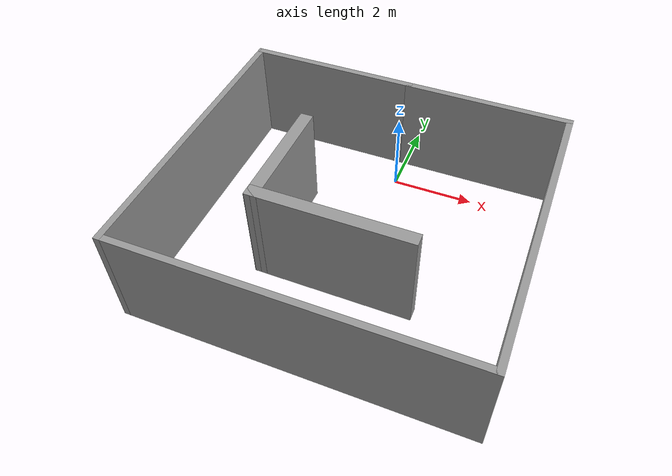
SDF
<?xml version='1.0'?>
<sdf version='1.7'>
  <model name='Environment'>
    <pose>-0.141375 -2.57885 0 0 -0 0</pose>
    <link name='Wall_70'>
      <collision name='Wall_70_Collision'>
        <geometry>
          <box>
            <size>4 0.15 2.5</size>
          </box>
        </geometry>
        <pose>0 0 1.25 0 -0 0</pose>
      </collision>
      <visual name='Wall_70_Visual'>
        <pose>0 0 1.25 0 -0 0</pose>
        <geometry>
          <box>
            <size>4 0.15 2.5</size>
          </box>
        </geometry>
        <material>
          <script>
            <uri>file://media/materials/scripts/gazebo.material</uri>
            <name>Gazebo/Grey</name>
          </script>
          <ambient>1 1 1 1</ambient>
        </material>
        <meta>
          <layer>0</layer>
        </meta>
      </visual>
      <pose>2 3.425 0 0 -0 0</pose>
    </link>
    <link name='Wall_79'>
      <collision name='Wall_79_Collision'>
        <geometry>
          <box>
            <size>7 0.15 2.5</size>
          </box>
        </geometry>
        <pose>0 0 1.25 0 -0 0</pose>
      </collision>
      <visual name='Wall_79_Visual'>
        <pose>0 0 1.25 0 -0 0</pose>
        <geometry>
          <box>
            <size>7 0.15 2.5</size>
          </box>
        </geometry>
        <material>
          <script>
            <uri>file://media/materials/scripts/gazebo.material</uri>
            <name>Gazebo/Grey</name>
          </script>
          <ambient>1 1 1 1</ambient>
        </material>
        <meta>
          <layer>0</layer>
        </meta>
      </visual>
      <pose>3.925 0 0 0 -0 -1.5708</pose>
    </link>
    <link name='Wall_80'>
      <collision name='Wall_80_Collision'>
        <geometry>
          <box>
            <size>8 0.15 2.5</size>
          </box>
        </geometry>
        <pose>0 0 1.25 0 -0 0</pose>
      </collision>
      <visual name='Wall_80_Visual'>
        <pose>0 0 1.25 0 -0 0</pose>
        <geometry>
          <box>
            <size>8 0.15 2.5</size>
          </box>
        </geometry>
        <material>
          <script>
            <uri>file://media/materials/scripts/gazebo.material</uri>
            <name>Gazebo/Grey</name>
          </script>
          <ambient>1 1 1 1</ambient>
        </material>
        <meta>
          <layer>0</layer>
        </meta>
      </visual>
      <pose>-0 -3.425 0 0 -0 3.14159</pose>
    </link>
    <link name='Wall_81'>
      <collision name='Wall_81_Collision'>
        <geometry>
          <box>
            <size>7 0.15 2.5</size>
          </box>
        </geometry>
        <pose>0 0 1.25 0 -0 0</pose>
      </collision>
      <visual name='Wall_81_Visual'>
        <pose>0 0 1.25 0 -0 0</pose>
        <geometry>
          <box>
            <size>7 0.15 2.5</size>
          </box>
        </geometry>
        <material>
          <script>
            <uri>file://media/materials/scripts/gazebo.material</uri>
            <name>Gazebo/Grey</name>
          </script>
          <ambient>1 1 1 1</ambient>
        </material>
        <meta>
          <layer>0</layer>
        </meta>
      </visual>
      <pose>-3.925 0 0 0 -0 1.5708</pose>
    </link>
    <link name='Wall_82'>
      <collision name='Wall_82_Collision'>
        <geometry>
          <box>
            <size>4.15 0.15 2.5</size>
          </box>
        </geometry>
        <pose>0 0 1.25 0 -0 0</pose>
      </collision>
      <visual name='Wall_82_Visual'>
        <pose>0 0 1.25 0 -0 0</pose>
        <geometry>
          <box>
            <size>4.15 0.15 2.5</size>
          </box>
        </geometry>
        <material>
          <script>
            <uri>file://media/materials/scripts/gazebo.material</uri>
            <name>Gazebo/Grey</name>
          </script>
          <ambient>1 1 1 1</ambient>
        </material>
        <meta>
          <layer>0</layer>
        </meta>
      </visual>
      <pose>-1.925 3.425 0 0 -0 0</pose>
    </link>
    <link name='Wall_89'>
      <collision name='Wall_89_Collision'>
        <geometry>
          <box>
            <size>2.81759 0.3 2.5</size>
          </box>
        </geometry>
        <pose>0 0 1.25 0 -0 0</pose>
      </collision>
      <visual name='Wall_89_Visual'>
        <pose>0 0 1.25 0 -0 0</pose>
        <geometry>
          <box>
            <size>2.81759 0.3 2.5</size>
          </box>
        </geometry>
        <material>
          <script>
            <uri>file://media/materials/scripts/gazebo.material</uri>
            <name>Gazebo/Grey</name>
          </script>
          <ambient>1 1 1 1</ambient>
        </material>
        <meta>
          <layer>0</layer>
        </meta>
      </visual>
      <pose>-1.7432 0.036644 0 0 -0 -1.57516</pose>
    </link>
    <link name='Wall_90'>
      <collision name='Wall_90_Collision'>
        <geometry>
          <box>
            <size>3.74307 0.3 2.5</size>
          </box>
        </geometry>
        <pose>0 0 1.25 0 -0 0</pose>
      </collision>
      <visual name='Wall_90_Visual'>
        <pose>0 0 1.25 0 -0 0</pose>
        <geometry>
          <box>
            <size>3.74307 0.3 2.5</size>
          </box>
        </geometry>
        <material>
          <script>
            <uri>file://media/materials/scripts/gazebo.material</uri>
            <name>Gazebo/Grey</name>
          </script>
          <ambient>1 1 1 1</ambient>
        </material>
        <meta>
          <layer>0</layer>
        </meta>
      </visual>
      <pose>-0.016161 -1.22215 0 0 -0 0</pose>
    </link>
    <static>1</static>
  </model>
</sdf>
